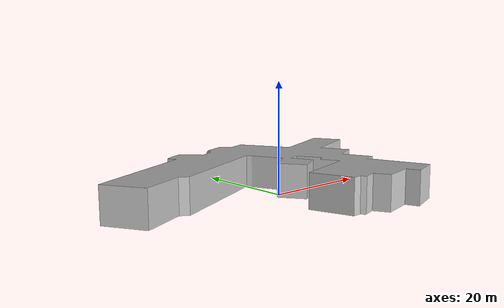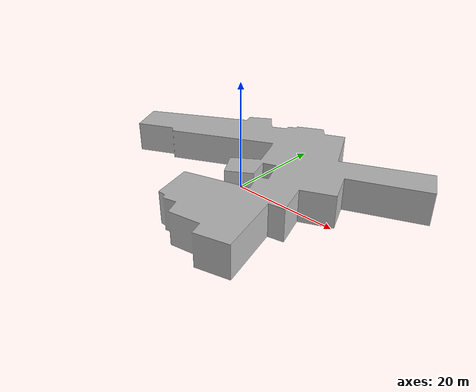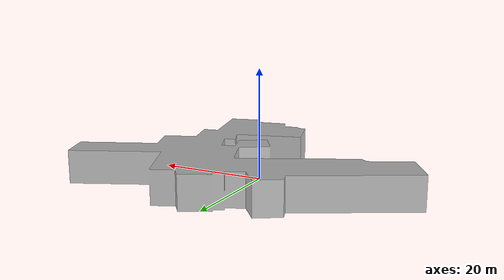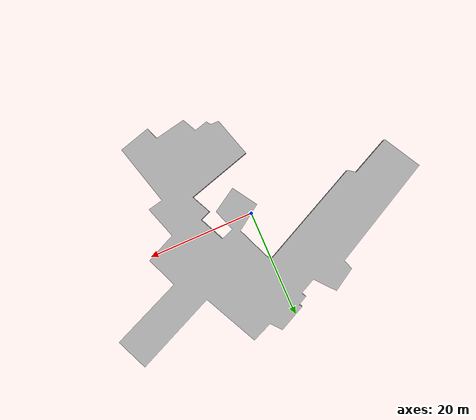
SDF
<?xml version="1.0" ?>
<sdf version="1.7">
  <model name="building_4182_assumed_a_casa">
    <static>true</static>
    <link name="building_link">
      <visual name="building_visual">
        <geometry>
          <mesh>
            <uri>model://building_4182_assumed_a_casa/meshes/construction_4182_assumed_A_Casa_h6m.obj</uri>
          </mesh>
        </geometry>
      </visual>
    <collision name="building_collision">
      <geometry>
        <mesh>
          <uri>model://building_4182_assumed_a_casa/meshes/construction_4182_assumed_A_Casa_h6m.obj</uri>
        </mesh>
      </geometry>
    </collision>
    </link>
  </model>
</sdf>
